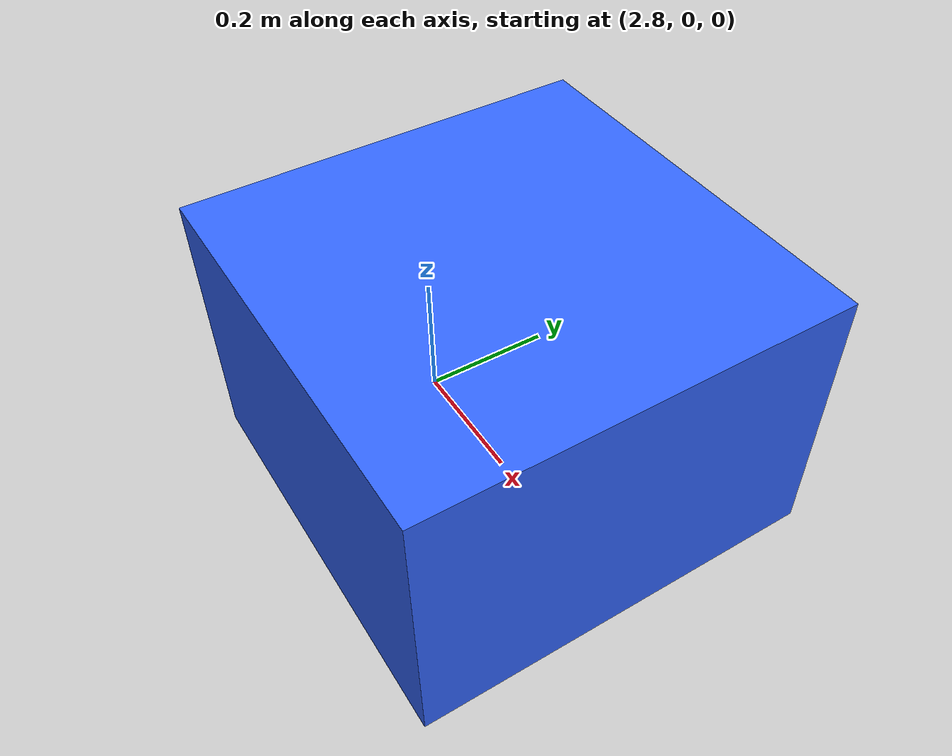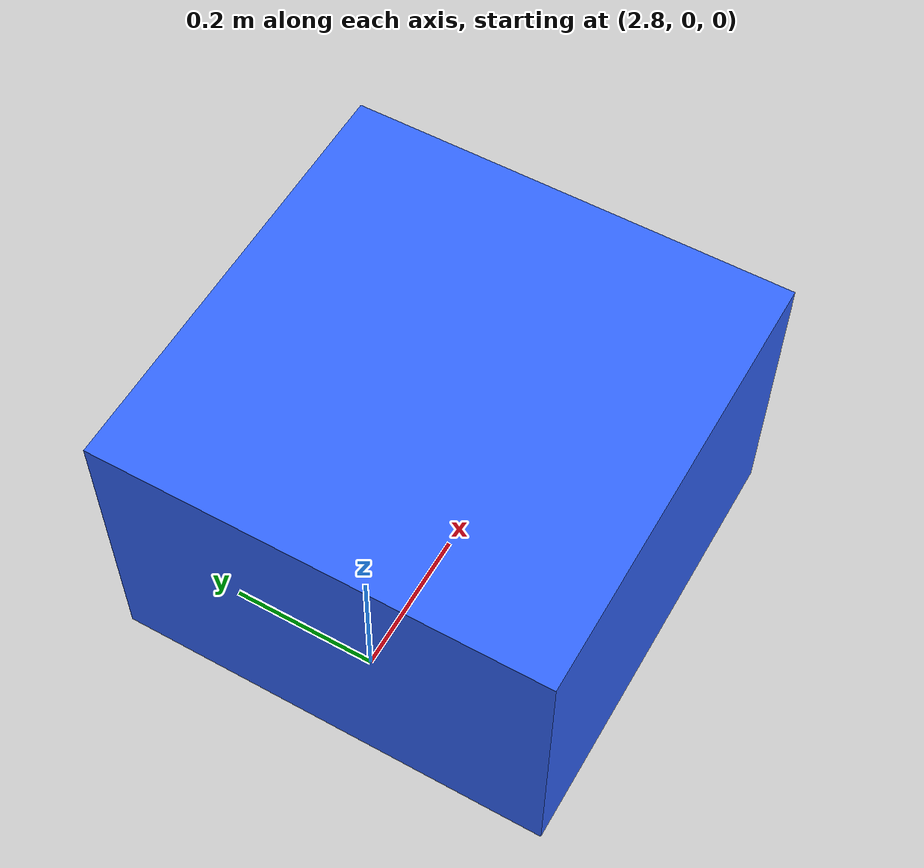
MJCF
<mujoco model="microduck_cushion">
    <compiler angle="radian" autolimits="true"/>
    <worldbody>
        <!-- Blue padded wall / cushion: 0.6 x 0.6 x 0.4 m (w x d x h), blue rgba.
             Static body (no freejoint) placed via initial pos in EntityCfg. -->
        <body name="cushion" pos="3 0 0.2">
            <geom type="box" name="cushion_geom" size="0.3 0.3 0.2" rgba="0.2 0.4 1 1" friction="0.8 0.1 0.1" solref="0.02 1" solimp="0.9 0.95 0.001 0.5 2"/>
        </body>
    </worldbody>
</mujoco>
